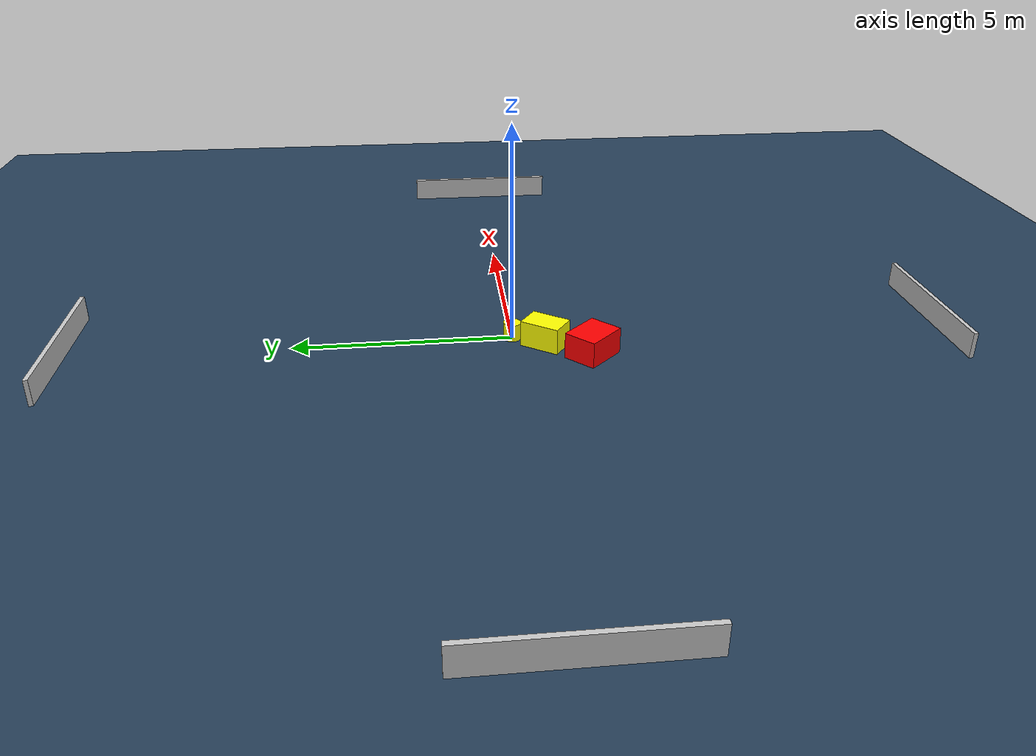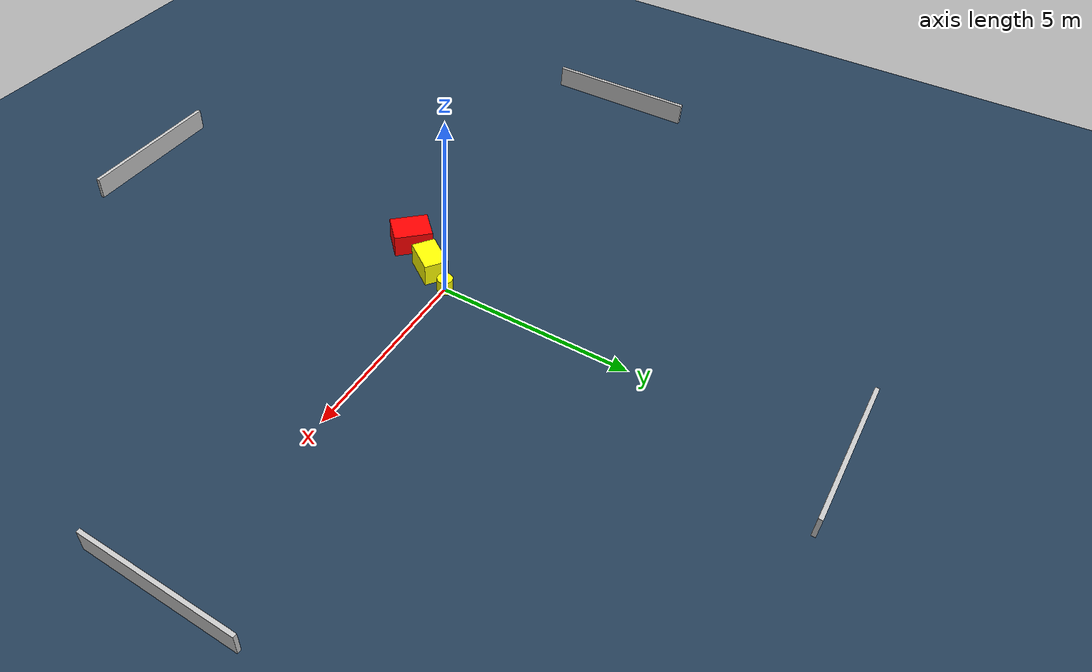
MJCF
<?xml version="1.0" ?>
<mujoco model="generated_environment">
  <option timestep="0.01" integrator="RK4" cone="elliptic"/>
  <default>
    <geom density="1"/>
  </default>
  <asset>
    <texture builtin="gradient" height="3072" name="skybox" rgb1="0.3 0.5 0.7" rgb2="0 0 0" type="skybox" width="512"/>
    <texture builtin="checker" height="300" name="groundplane" rgb1="0.2 0.3 0.4" rgb2="0.1 0.2 0.3" type="2d" width="300"/>
    <material name="groundplane" reflectance="0.2" texrepeat="5 5" texture="groundplane"/>
  </asset>
  <worldbody>
    <light dir="0 0 -1" directional="true" pos="0 0 1.5"/>
    <geom condim="3" friction="0.5 0.005 0.001" material="groundplane" name="floor" pos="0 0 0" size="0 0 0.05" type="plane"/>
    <body name="walls">
      <geom name="wall_1" condim="4" pos="-10.0 0.0 0.3" rgba="0.800000011920929 0.800000011920929 0.800000011920929 1.0" size="0.05 2.0 0.3" type="box"/>
      <geom name="wall_2" condim="4" pos="10.0 0.0 0.3" rgba="0.800000011920929 0.800000011920929 0.800000011920929 1.0" size="0.05 2.0 0.3" type="box"/>
      <geom name="wall_3" condim="4" pos="0.0 -10.0 0.3" rgba="0.800000011920929 0.800000011920929 0.800000011920929 1.0" size="2.0 0.05 0.3" type="box"/>
      <geom name="wall_4" condim="4" pos="0.0 10.0 0.3" rgba="0.800000011920929 0.800000011920929 0.800000011920929 1.0" size="2.0 0.05 0.3" type="box"/>
    </body>
    <body name="robot">
      <joint name="joint_x" type="slide" pos="0 0 0" axis="1 0 0"/>
      <joint name="joint_y" type="slide" pos="0 0 0" axis="0 1 0"/>
      <geom name="robot" type="cylinder" pos="0.0 0.0 0.2" size="0.2 0.2 0.0" mass="5.0" friction="1.0 0.005 0.0001" condim="4" rgba="1.0 1.0 0.0 1.0"/>
    </body>
    <body name="obstacle_1_movable">
      <geom name="obstacle_1_movable" condim="4" pos="-0.3952737510110678 -0.7096174973649535 0.3" euler="0 0 324.4354960402789" friction="0.0 0.005 0.001" rgba="1.0 1.0 0.0 1.0" size="0.3092870114701053 0.46361975655957227 0.3" type="box" mass="0.1"/>
      <joint type="free"/>
    </body>
    <body name="obstacle_2_static">
      <geom name="obstacle_2_static" condim="4" pos="-0.9985820510674147 -1.6859070503022138 0.3" euler="0 0 133.99192568791707" friction="0.0 0.005 0.001" rgba="1.0 0.0 0.0 1.0" size="0.4982393181231108 0.39225143362445886 0.3" type="box"/>
    </body>
  </worldbody>
  <actuator>
    <motor name="actuator_x" joint="joint_x" gear="1" ctrlrange="-1 1"/>
    <motor name="actuator_y" joint="joint_y" gear="1" ctrlrange="-1 1"/>
  </actuator>
</mujoco>
